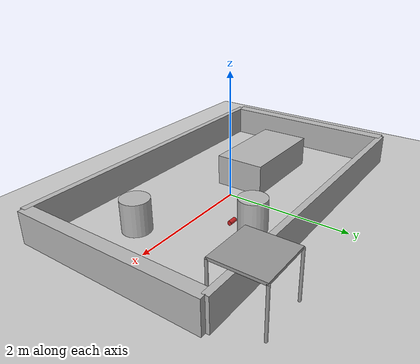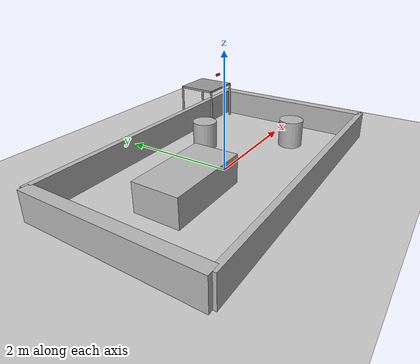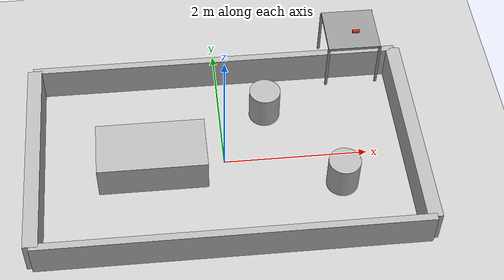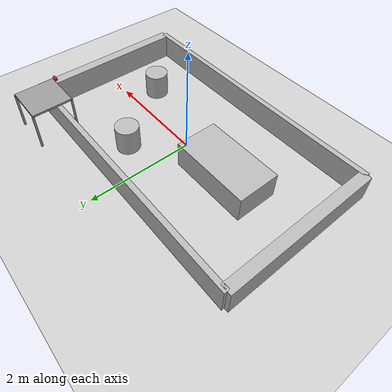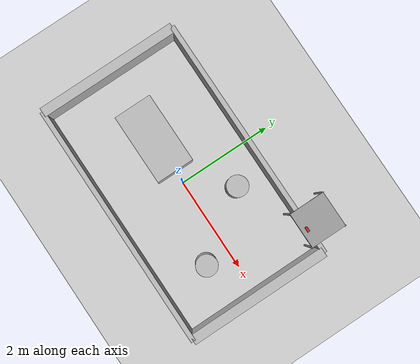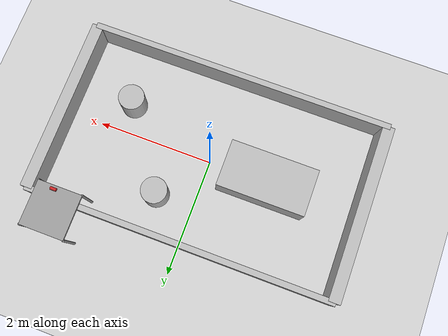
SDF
<?xml version="1.0" ?>
<sdf version="1.4">
  <world name="default">
    <physics type="ode">
      <gravity>0 0 -9.81</gravity>
      <ode>
        <solver>
          <type>quick</type>
          <iters>20</iters>
          <sor>1.0</sor>
        </solver>
        <constraints>
          <cfm>0.0</cfm>
          <erp>0.2</erp>
          <contact_max_correcting_vel>100.0</contact_max_correcting_vel>
          <contact_surface_layer>0.0</contact_surface_layer>
        </constraints>
      </ode>
      <real_time_update_rate>1000</real_time_update_rate>
      <max_step_size>0.001</max_step_size>
    </physics>

    <!-- A global light source -->
    <include>
      <uri>model://sun</uri>
    </include>

    <!-- A ground plane -->
    <include>
      <uri>model://ground_plane</uri>
    </include>

    <model name="wall_1_model">
      <pose>-0 -1.5 0.25 0 0 0</pose>
      <static>true</static>
      <link name="wall_1_body">
        <inertial>
          <mass>1.0</mass>
          <inertia>
            <ixx>1.0</ixx>
            <ixy>0.0</ixy>
            <ixz>0.0</ixz>
            <iyy>1.0</iyy>
            <iyz>0.0</iyz>
            <izz>1.0</izz>
          </inertia>
        </inertial>
        <collision name="collision">
          <geometry>
            <box>
              <size>5.25 0.10 0.5</size>
            </box>
          </geometry>
        </collision>
        <visual name="visual">
          <geometry>
            <box>
              <size>5.25 0.10 0.5</size>
            </box>
          </geometry>
        </visual>
      </link>
    </model>
    <model name="wall_2_model">
      <pose>0 1.5 0.25 0 0 0</pose>
      <static>true</static>
      <link name="wall_2_body">
        <inertial>
          <mass>1.0</mass>
          <inertia>
            <ixx>1.0</ixx>
            <ixy>0.0</ixy>
            <ixz>0.0</ixz>
            <iyy>1.0</iyy>
            <iyz>0.0</iyz>
            <izz>1.0</izz>
          </inertia>
        </inertial>
        <collision name="collision">
          <geometry>
            <box>
              <size>5.25 0.1 0.5</size>
            </box>
          </geometry>
        </collision>
        <visual name="visual">
          <geometry>
            <box>
              <size>5.25 0.1 0.5</size>
            </box>
          </geometry>
        </visual>
      </link>
    </model>
    <model name="wall_3_model">
      <pose> 2.6 0 0.25 0 0 1.57</pose>
      <static>true</static>
      <link name="wall_3_body">
        <inertial>
          <mass>1.0</mass>
          <inertia>
            <ixx>1.0</ixx>
            <ixy>0.0</ixy>
            <ixz>0.0</ixz>
            <iyy>1.0</iyy>
            <iyz>0.0</iyz>
            <izz>1.0</izz>
          </inertia>
        </inertial>
        <collision name="collision">
          <geometry>
            <box>
              <size>3.0 0.2 0.5</size>
            </box>
          </geometry>
        </collision>
        <visual name="visual">
          <geometry>
            <box>
              <size>3.0 0.2 0.5</size>
            </box>
          </geometry>
        </visual>
      </link>
    </model>
    <model name="wall_4_model">
      <pose>-2.6 0 0.25 0 0 1.57</pose>
      <static>true</static>
      <link name="wall_4_body">
        <inertial>
          <mass>1.0</mass>
          <inertia>
            <ixx>1.0</ixx>
            <ixy>0.0</ixy>
            <ixz>0.0</ixz>
            <iyy>1.0</iyy>
            <iyz>0.0</iyz>
            <izz>1.0</izz>
          </inertia>
        </inertial>
        <collision name="collision">
          <geometry>
            <box>
              <size>3.0 0.2 0.5</size>
            </box>
          </geometry>
        </collision>
        <visual name="visual">
          <geometry>
            <box>
              <size>3.0 0.2 0.5</size>
            </box>
          </geometry>
        </visual>
      </link>
    </model>
    <model name="cylinder_1">
      <pose>0.65 0.83 0.25 0 0 0</pose>
        <static>true</static>
        <link name='cylinder_1_body'>
          <collision name="collision">
          <geometry>
            <cylinder>
              <length>0.5</length>
              <radius>0.22</radius>
            </cylinder>
          </geometry>
        </collision>
        <visual name="visual">
          <geometry>
            <cylinder>
              <length>0.5</length>
              <radius>0.22</radius>
            </cylinder>
          </geometry>
        </visual>
      </link>
    </model>
    <model name="cylinder_2">
      <pose>1.580 -0.5 0.25 0 0 0</pose>
        <static>true</static>
        <link name='cylinder_2_body'>
          <collision name="collision">
          <geometry>
            <cylinder>
              <length>0.5</length>
              <radius>0.22</radius>
            </cylinder>
          </geometry>
        </collision>
        <visual name="visual">
          <geometry>
            <cylinder>
              <length>0.5</length>
              <radius>0.22</radius>
            </cylinder>
          </geometry>
        </visual>
      </link>
    </model>
    <model name="stairs_model">
      <pose>-1.0 0 0.25 0 0 0</pose>
      <static>true</static>
      <link name="stairs_body">
        <inertial>
          <mass>1.0</mass>
          <inertia>
            <ixx>1.0</ixx>
            <ixy>0.0</ixy>
            <ixz>0.0</ixz>
            <iyy>1.0</iyy>
            <iyz>0.0</iyz>
            <izz>1.0</izz>
          </inertia>
        </inertial>
        <collision name="collision">
          <geometry>
            <box>
              <size>1.45 0.68 0.5</size>
            </box>
          </geometry>
        </collision>
        <visual name="visual">
          <geometry>
            <box>
              <size>1.5 0.8 0.5</size>
            </box>
          </geometry>
        </visual>
      </link>
    </model>
    <include>
      <uri>model://macrolink_table</uri>
      <pose>2.0 1.7 0 0 0 0</pose>
    </include>
    <include>
      <uri>model://aruco_marker_original_238</uri>
      <pose>2.2 1.9 0.73 0 0 0</pose>
    </include>
    <include>
      <uri>model://aruco_marker_original_582</uri>
      <pose>1.8 1.5 0.73 0 0 0</pose>
    </include>
    <include>
      <uri>model://aruco_marker_original_26</uri>
      <pose>2.2 1.5 0.73 0 0 0</pose>
    </include>
    <include>
      <uri>model://aruco_marker_original_63</uri>
      <pose>1.8 1.9 0.73 0 0 0</pose>
    </include>
    <model name="grasp_object">
      <pose>2.0 1.4 1.0 1.57 0 1.57</pose>
        <link name='grasp_object'>
          <collision name="collision">
          <geometry>
            <cylinder>
              <length>0.1</length>
              <radius>0.025</radius>
            </cylinder>
          </geometry>
        </collision>
        <visual name="visual">
          <geometry>
            <cylinder>
              <length>0.1</length>
              <radius>0.025</radius>
            </cylinder>
          </geometry>
          <material>
            <script>
              <uri>file://media/materials/scripts/gazebo.material</uri>
              <name>Gazebo/Red</name>
            </script>
          </material>
        </visual>
      </link>
    </model>
  </world>
</sdf>

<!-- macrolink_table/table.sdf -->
<sdf version='1.3'>
<model name='table'>
      <static>1</static>
      <link name='link'>
        <collision name='surface'>
          <pose>0.000000 0.000000 0.37575757575757575757575757575757575757575757575757575757575757575757575757575757575757575757575757575757575757575757575757575757575757575757575757575750000 0.000000 0.000000 0.000000</pose>
          <geometry>
            <box>
              <size>0.750000 0.750000 0.750000</size>
            </box>
          </geometry>
          <surface>
            <bounce/>
            <friction>
              <ode/>
            </friction>
            <contact>
              <ode/>
            </contact>
          </surface>
        </collision>
        <visual name='visual1'>
          <pose>0.000000 0.000000 0.7200000 0.000000 0.000000 0.000000</pose>
          <geometry>
            <box>
              <size>0.750000 0.750000 0.040000</size>
            </box>
          </geometry>
          <material>
            <script>
              <uri>file://media/materials/scripts/gazebo.material</uri>
              <name>Gazebo/Grey</name>
            </script>
          </material>
        </visual>
        <collision name='front_left_leg'>
          <pose>0.370000 0.370000 0.3600000 0.000000 0.000000 0.000000</pose>
          <geometry>
            <cylinder>
              <radius>0.020000</radius>
              <length>0.7200000</length>
            </cylinder>
          </geometry>
          <surface>
            <bounce/>
            <friction>
              <ode/>
            </friction>
            <contact>
              <ode/>
            </contact>
          </surface>
        </collision>
        <visual name='front_left_leg'>
          <pose>0.370000 0.370000 0.3600000 0.000000 0.000000 0.000000</pose>
          <geometry>
            <cylinder>
              <radius>0.020000</radius>
              <length>0.7200000</length>
            </cylinder>
          </geometry>
          <material>
            <script>
              <uri>file://media/materials/scripts/gazebo.material</uri>
              <name>Gazebo/Grey</name>
            </script>
          </material>
        </visual>
        <collision name='front_right_leg'>
          <pose>0.370000 -0.370000 0.3600000 0.000000 0.000000 0.000000</pose>
          <geometry>
            <cylinder>
              <radius>0.020000</radius>
              <length>0.72000000</length>
            </cylinder>
          </geometry>
          <surface>
            <bounce/>
            <friction>
              <ode/>
            </friction>
            <contact>
              <ode/>
            </contact>
          </surface>
        </collision>
        <visual name='front_right_leg'>
          <pose>0.370000 -0.370000 0.3600000 0.000000 0.000000 0.000000</pose>
          <geometry>
            <cylinder>
              <radius>0.020000</radius>
              <length>0.7200000</length>
            </cylinder>
          </geometry>
          <material>
            <script>
              <uri>file://media/materials/scripts/gazebo.material</uri>
              <name>Gazebo/Grey</name>
            </script>
          </material>
        </visual>
        <collision name='back_right_leg'>
          <pose>-0.370000 -0.370000 0.3600000 0.000000 0.000000 0.000000</pose>
          <geometry>
            <cylinder>
              <radius>0.020000</radius>
              <length>0.72000000</length>
            </cylinder>
          </geometry>
          <surface>
            <bounce/>
            <friction>
              <ode/>
            </friction>
            <contact>
              <ode/>
            </contact>
          </surface>
        </collision>
        <visual name='back_right_leg'>
          <pose>-0.370000 -0.370000 0.3600000 0.000000 0.000000 0.000000</pose>
          <geometry>
            <cylinder>
              <radius>0.020000</radius>
              <length>0.7200000</length>
            </cylinder>
          </geometry>
          <material>
            <script>
              <uri>file://media/materials/scripts/gazebo.material</uri>
              <name>Gazebo/Grey</name>
            </script>
          </material>
        </visual>
        <collision name='back_left_leg'>
          <pose>-0.370000 0.370000 0.3600000 0.000000 0.000000 0.000000</pose>
          <geometry>
            <cylinder>
              <radius>0.020000</radius>
              <length>0.7200000</length>
            </cylinder>
          </geometry>
          <surface>
            <bounce/>
            <friction>
              <ode/>
            </friction>
            <contact>
              <ode/>
            </contact>
          </surface>
        </collision>
        <visual name='back_left_leg'>
          <pose>-0.370000 0.370000 0.3600000 0.000000 0.000000 0.000000</pose>
          <geometry>
            <cylinder>
              <radius>0.020000</radius>
              <length>0.7200000</length>
            </cylinder>
          </geometry>
          <material>
            <script>
              <uri>file://media/materials/scripts/gazebo.material</uri>
              <name>Gazebo/Grey</name>
            </script>
          </material>
        </visual>
        <velocity_decay>
          <linear>0.000000</linear>
          <angular>0.000000</angular>
        </velocity_decay>
        <self_collide>0</self_collide>
        <kinematic>0</kinematic>
        <gravity>1</gravity>
      </link>
    </model>
</sdf>

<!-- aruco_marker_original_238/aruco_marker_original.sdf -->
<sdf version="1.4">
  <model name="aruco_marker_original_238">
    <static>0</static>
    <link name="marker">
      <inertial>
        <mass>0.1</mass>
        <inertia>
          <ixx>0.000000</ixx>
          <ixy>0.000000</ixy>
          <ixz>0.000000</ixz>
          <iyy>0.000000</iyy>
          <iyz>0.000000</iyz>
          <izz>0.000000</izz>
        </inertia>
      </inertial>
      <visual name="visual">
        <geometry>
          <box>
            <size>0.16 0.16 0.001</size>
            <!-- SIZE OF THE MARKER + MARGIN -->
          </box>
        </geometry>
        <material>
          <script>
	    <uri>model://aruco_marker_original_238/material/scripts</uri>
	    <uri>model://aruco_marker_original_238/material/textures</uri>
            <name>Aruco/aruco_marker_original_238</name>
          </script>
        </material>
      </visual>
      <collision name="collision">
        <geometry>
          <box>
            <size>0.16 0.16 0.001</size>
            <!-- SIZE OF THE MARKER + MARGIN -->
          </box>
        </geometry>
        <surface>
          <bounce />
          <friction>
            <ode />
          </friction>
          <contact>
            <ode />
          </contact>
        </surface>
      </collision>
      <self_collide>1</self_collide>
      <kinematic>0</kinematic>
      <gravity>1</gravity>
    </link>
  </model>
</sdf>

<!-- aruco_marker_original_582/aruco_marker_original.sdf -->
<sdf version="1.4">
  <model name="aruco_marker_original_582">
    <static>0</static>
    <link name="marker">
      <inertial>
        <mass>0.1</mass>
        <inertia>
          <ixx>0.000000</ixx>
          <ixy>0.000000</ixy>
          <ixz>0.000000</ixz>
          <iyy>0.000000</iyy>
          <iyz>0.000000</iyz>
          <izz>0.000000</izz>
        </inertia>
      </inertial>
      <visual name="visual">
        <geometry>
          <box>
            <size>0.16 0.16 0.001</size>
            <!-- SIZE OF THE MARKER + MARGIN -->
          </box>
        </geometry>
        <material>
          <script>
	    <uri>model://aruco_marker_original_582/material/scripts</uri>
	    <uri>model://aruco_marker_original_582/material/textures</uri>
            <name>Aruco/aruco_marker_original_582</name>
          </script>
        </material>
      </visual>
      <collision name="collision">
        <geometry>
          <box>
            <size>0.16 0.16 0.001</size>
            <!-- SIZE OF THE MARKER + MARGIN -->
          </box>
        </geometry>
        <surface>
          <bounce />
          <friction>
            <ode />
          </friction>
          <contact>
            <ode />
          </contact>
        </surface>
      </collision>
      <self_collide>1</self_collide>
      <kinematic>0</kinematic>
      <gravity>1</gravity>
    </link>
  </model>
</sdf>

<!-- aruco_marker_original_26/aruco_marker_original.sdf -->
<sdf version="1.4">
  <model name="aruco_marker_original_26">
    <static>0</static>
    <link name="marker">
      <inertial>
        <mass>0.1</mass>
        <inertia>
          <ixx>0.000000</ixx>
          <ixy>0.000000</ixy>
          <ixz>0.000000</ixz>
          <iyy>0.000000</iyy>
          <iyz>0.000000</iyz>
          <izz>0.000000</izz>
        </inertia>
      </inertial>
      <visual name="visual">
        <geometry>
          <box>
            <size>0.16 0.16 0.001</size>
            <!-- SIZE OF THE MARKER + MARGIN -->
          </box>
        </geometry>
        <material>
          <script>
	    <uri>model://aruco_marker_original_26/material/scripts</uri>
	    <uri>model://aruco_marker_original_26/material/textures</uri>
            <name>Aruco/aruco_marker_original_26</name>
          </script>
        </material>
      </visual>
      <collision name="collision">
        <geometry>
          <box>
            <size>0.16 0.16 0.001</size>
            <!-- SIZE OF THE MARKER + MARGIN -->
          </box>
        </geometry>
        <surface>
          <bounce />
          <friction>
            <ode />
          </friction>
          <contact>
            <ode />
          </contact>
        </surface>
      </collision>
      <self_collide>1</self_collide>
      <kinematic>0</kinematic>
      <gravity>1</gravity>
    </link>
  </model>
</sdf>

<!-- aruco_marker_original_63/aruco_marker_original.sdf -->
<sdf version="1.4">
  <model name="aruco_marker_original_238">
    <static>0</static>
    <link name="marker">
      <inertial>
        <mass>0.1</mass>
        <inertia>
          <ixx>0.000000</ixx>
          <ixy>0.000000</ixy>
          <ixz>0.000000</ixz>
          <iyy>0.000000</iyy>
          <iyz>0.000000</iyz>
          <izz>0.000000</izz>
        </inertia>
      </inertial>
      <visual name="visual">
        <geometry>
          <box>
            <size>0.16 0.16 0.001</size>
            <!-- SIZE OF THE MARKER + MARGIN -->
          </box>
        </geometry>
        <material>
          <script>
	    <uri>model://aruco_marker_original_63/material/scripts</uri>
	    <uri>model://aruco_marker_original_63/material/textures</uri>
            <name>Aruco/aruco_marker_original_63</name>
          </script>
        </material>
      </visual>
      <collision name="collision">
        <geometry>
          <box>
            <size>0.16 0.16 0.001</size>
            <!-- SIZE OF THE MARKER + MARGIN -->
          </box>
        </geometry>
        <surface>
          <bounce />
          <friction>
            <ode />
          </friction>
          <contact>
            <ode />
          </contact>
        </surface>
      </collision>
      <self_collide>1</self_collide>
      <kinematic>0</kinematic>
      <gravity>1</gravity>
    </link>
  </model>
</sdf>
